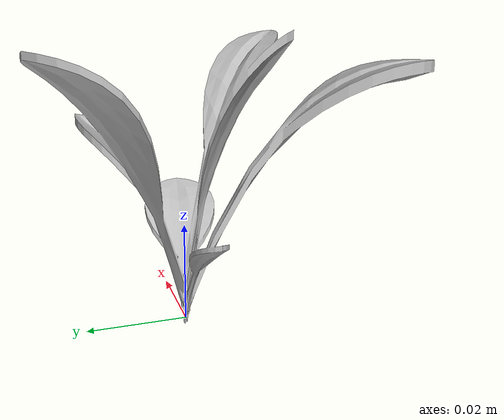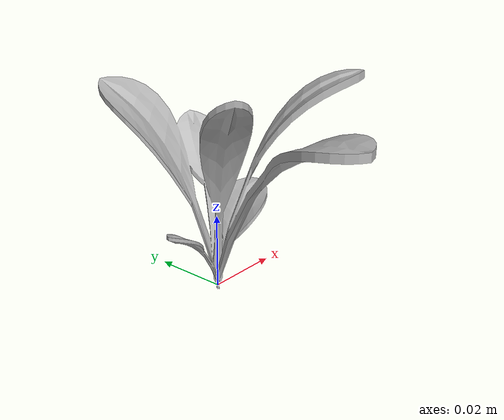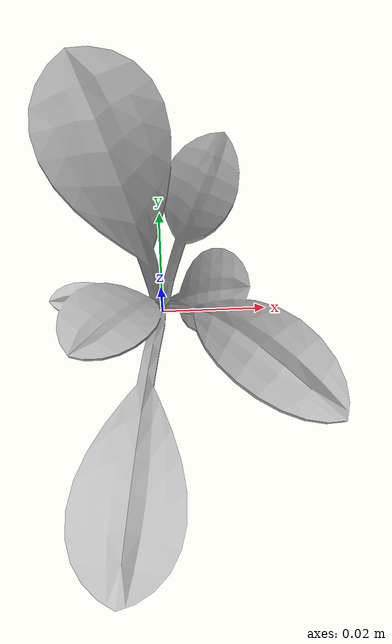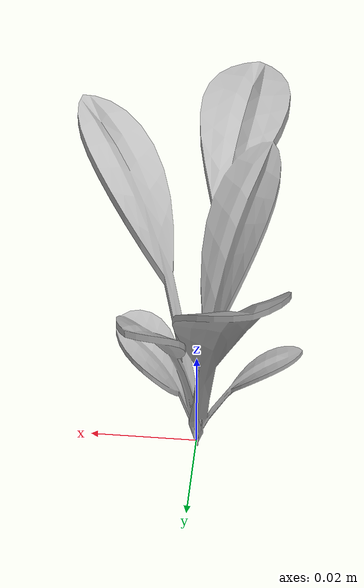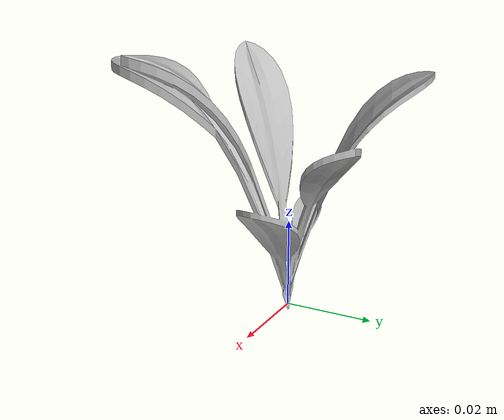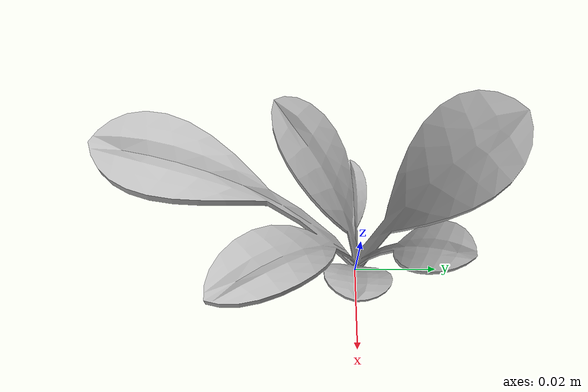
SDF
<sdf version="1.6">
  <model name="sugar_beet_13">
    <static>true</static>
    <link name="body">
      <visual name="visual">
        <geometry>
          <mesh>
            <uri>file:///sugar_beet_13/media/sugar_beet.dae</uri>
          </mesh>
        </geometry>
      </visual>
    </link>
  </model>
</sdf>
